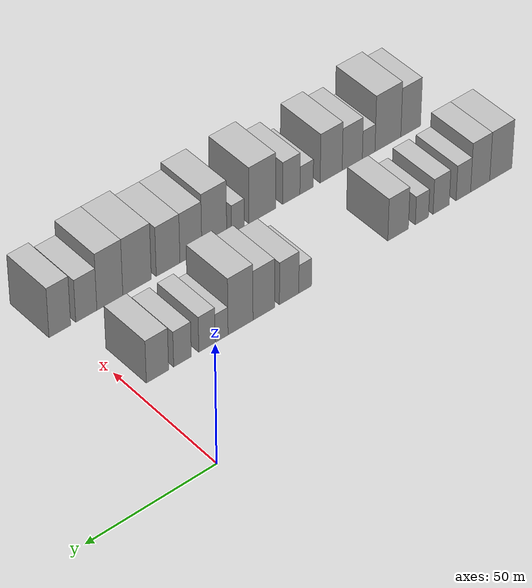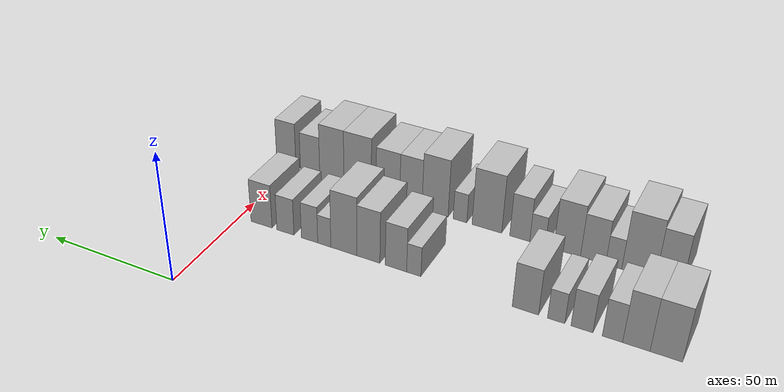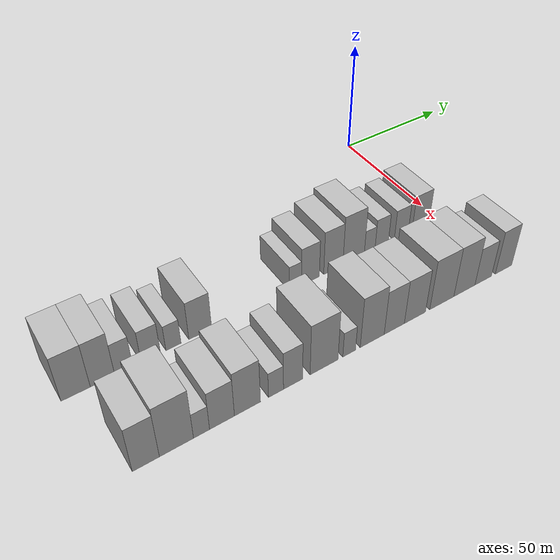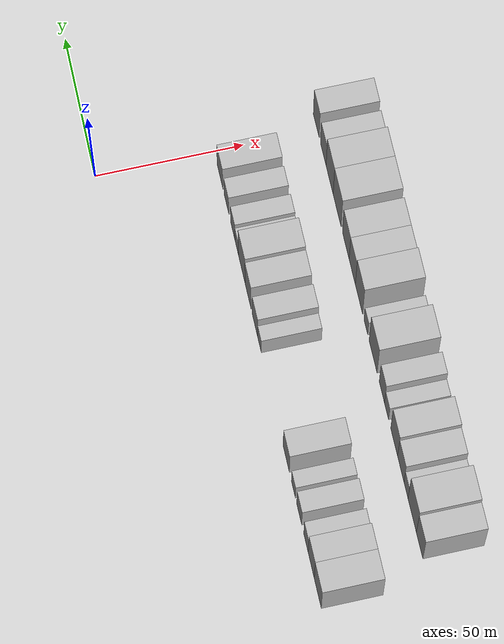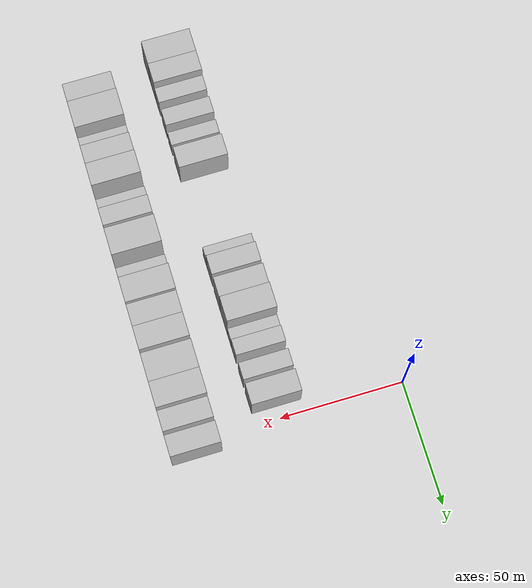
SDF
<sdf version="1.6">
 <world name="default">
  <model name="building_16">
   <static>1</static>
   <pose>50.0000 -153.5488 0 0.000000 0.000000 0.000000</pose>
   <link name="link">
    <pose>0 0 10.50 0 0 0</pose>
    <collision name="collision"><geometry><box><size>20.0000 9.9040 21.0000</size></box></geometry></collision>
    <visual name="visual">
     <cast_shadows>0</cast_shadows>
     <geometry><box><size>20.0000 9.9040 21.0000</size></box></geometry>
     <material>
      <script>
       <uri>model://HANNAS_wall/materials/scripts</uri>
       <uri>model://HANNAS_wall/materials/textures</uri>
       <name>vrc/HANNAS_wall</name>
      </script>
     </material>
    </visual>
   </link>
  </model>
  <model name="building_17">
   <static>1</static>
   <pose>50.0000 -144.3507 0 0.000000 0.000000 0.000000</pose>
   <link name="link">
    <pose>0 0 10.50 0 0 0</pose>
    <collision name="collision"><geometry><box><size>20.0000 8.4921 21.0000</size></box></geometry></collision>
    <visual name="visual">
     <cast_shadows>0</cast_shadows>
     <geometry><box><size>20.0000 8.4921 21.0000</size></box></geometry>
     <material>
      <script>
       <uri>model://HANNAS_wall/materials/scripts</uri>
       <uri>model://HANNAS_wall/materials/textures</uri>
       <name>vrc/HANNAS_wall</name>
      </script>
     </material>
    </visual>
   </link>
  </model>
  <model name="building_18">
   <static>1</static>
   <pose>50.0000 -136.8926 0 0.000000 0.000000 0.000000</pose>
   <link name="link">
    <pose>0 0 7.50 0 0 0</pose>
    <collision name="collision"><geometry><box><size>20.0000 6.4240 15.0000</size></box></geometry></collision>
    <visual name="visual">
     <cast_shadows>0</cast_shadows>
     <geometry><box><size>20.0000 6.4240 15.0000</size></box></geometry>
     <material>
      <script>
       <uri>model://HANNAS_wall/materials/scripts</uri>
       <uri>model://HANNAS_wall/materials/textures</uri>
       <name>vrc/HANNAS_wall</name>
      </script>
     </material>
    </visual>
   </link>
  </model>
  <model name="building_19">
   <static>1</static>
   <pose>50.0000 -127.1403 0 0.000000 0.000000 0.000000</pose>
   <link name="link">
    <pose>0 0 7.50 0 0 0</pose>
    <collision name="collision"><geometry><box><size>20.0000 7.0807 15.0000</size></box></geometry></collision>
    <visual name="visual">
     <cast_shadows>0</cast_shadows>
     <geometry><box><size>20.0000 7.0807 15.0000</size></box></geometry>
     <material>
      <script>
       <uri>model://HANNAS_wall/materials/scripts</uri>
       <uri>model://HANNAS_wall/materials/textures</uri>
       <name>vrc/HANNAS_wall</name>
      </script>
     </material>
    </visual>
   </link>
  </model>
  <model name="building_20">
   <static>1</static>
   <pose>50.0000 -118.7447 0 0.000000 0.000000 0.000000</pose>
   <link name="link">
    <pose>0 0 6.00 0 0 0</pose>
    <collision name="collision"><geometry><box><size>20.0000 5.7105 12.0000</size></box></geometry></collision>
    <visual name="visual">
     <cast_shadows>0</cast_shadows>
     <geometry><box><size>20.0000 5.7105 12.0000</size></box></geometry>
     <material>
      <script>
       <uri>model://HANNAS_wall/materials/scripts</uri>
       <uri>model://HANNAS_wall/materials/textures</uri>
       <name>vrc/HANNAS_wall</name>
      </script>
     </material>
    </visual>
   </link>
  </model>
  <model name="building_21">
   <static>1</static>
   <pose>50.0000 -108.4547 0 0.000000 0.000000 0.000000</pose>
   <link name="link">
    <pose>0 0 9.00 0 0 0</pose>
    <collision name="collision"><geometry><box><size>20.0000 8.8697 18.0000</size></box></geometry></collision>
    <visual name="visual">
     <cast_shadows>0</cast_shadows>
     <geometry><box><size>20.0000 8.8697 18.0000</size></box></geometry>
     <material>
      <script>
       <uri>model://HANNAS_wall/materials/scripts</uri>
       <uri>model://HANNAS_wall/materials/textures</uri>
       <name>vrc/HANNAS_wall</name>
      </script>
     </material>
    </visual>
   </link>
  </model>
  <model name="building_22">
   <static>1</static>
   <pose>50.0000 -69.1038 0 0.000000 0.000000 0.000000</pose>
   <link name="link">
    <pose>0 0 6.00 0 0 0</pose>
    <collision name="collision"><geometry><box><size>20.0000 5.2773 12.0000</size></box></geometry></collision>
    <visual name="visual">
     <cast_shadows>0</cast_shadows>
     <geometry><box><size>20.0000 5.2773 12.0000</size></box></geometry>
     <material>
      <script>
       <uri>model://HANNAS_wall/materials/scripts</uri>
       <uri>model://HANNAS_wall/materials/textures</uri>
       <name>vrc/HANNAS_wall</name>
      </script>
     </material>
    </visual>
   </link>
  </model>
  <model name="building_23">
   <static>1</static>
   <pose>50.0000 -62.4682 0 0.000000 0.000000 0.000000</pose>
   <link name="link">
    <pose>0 0 9.00 0 0 0</pose>
    <collision name="collision"><geometry><box><size>20.0000 7.9938 18.0000</size></box></geometry></collision>
    <visual name="visual">
     <cast_shadows>0</cast_shadows>
     <geometry><box><size>20.0000 7.9938 18.0000</size></box></geometry>
     <material>
      <script>
       <uri>model://HANNAS_wall/materials/scripts</uri>
       <uri>model://HANNAS_wall/materials/textures</uri>
       <name>vrc/HANNAS_wall</name>
      </script>
     </material>
    </visual>
   </link>
  </model>
  <model name="building_24">
   <static>1</static>
   <pose>50.0000 -52.0570 0 0.000000 0.000000 0.000000</pose>
   <link name="link">
    <pose>0 0 10.50 0 0 0</pose>
    <collision name="collision"><geometry><box><size>20.0000 8.8287 21.0000</size></box></geometry></collision>
    <visual name="visual">
     <cast_shadows>0</cast_shadows>
     <geometry><box><size>20.0000 8.8287 21.0000</size></box></geometry>
     <material>
      <script>
       <uri>model://HANNAS_wall/materials/scripts</uri>
       <uri>model://HANNAS_wall/materials/textures</uri>
       <name>vrc/HANNAS_wall</name>
      </script>
     </material>
    </visual>
   </link>
  </model>
  <model name="building_25">
   <static>1</static>
   <pose>50.0000 -42.5791 0 0.000000 0.000000 0.000000</pose>
   <link name="link">
    <pose>0 0 12.00 0 0 0</pose>
    <collision name="collision"><geometry><box><size>20.0000 10.1271 24.0000</size></box></geometry></collision>
    <visual name="visual">
     <cast_shadows>0</cast_shadows>
     <geometry><box><size>20.0000 10.1271 24.0000</size></box></geometry>
     <material>
      <script>
       <uri>model://HANNAS_wall/materials/scripts</uri>
       <uri>model://HANNAS_wall/materials/textures</uri>
       <name>vrc/HANNAS_wall</name>
      </script>
     </material>
    </visual>
   </link>
  </model>
  <model name="building_26">
   <static>1</static>
   <pose>50.0000 -34.9127 0 0.000000 0.000000 0.000000</pose>
   <link name="link">
    <pose>0 0 6.00 0 0 0</pose>
    <collision name="collision"><geometry><box><size>20.0000 5.2056 12.0000</size></box></geometry></collision>
    <visual name="visual">
     <cast_shadows>0</cast_shadows>
     <geometry><box><size>20.0000 5.2056 12.0000</size></box></geometry>
     <material>
      <script>
       <uri>model://HANNAS_wall/materials/scripts</uri>
       <uri>model://HANNAS_wall/materials/textures</uri>
       <name>vrc/HANNAS_wall</name>
      </script>
     </material>
    </visual>
   </link>
  </model>
  <model name="building_27">
   <static>1</static>
   <pose>50.0000 -29.0377 0 0.000000 0.000000 0.000000</pose>
   <link name="link">
    <pose>0 0 7.50 0 0 0</pose>
    <collision name="collision"><geometry><box><size>20.0000 6.5444 15.0000</size></box></geometry></collision>
    <visual name="visual">
     <cast_shadows>0</cast_shadows>
     <geometry><box><size>20.0000 6.5444 15.0000</size></box></geometry>
     <material>
      <script>
       <uri>model://HANNAS_wall/materials/scripts</uri>
       <uri>model://HANNAS_wall/materials/textures</uri>
       <name>vrc/HANNAS_wall</name>
      </script>
     </material>
    </visual>
   </link>
  </model>
  <model name="building_28">
   <static>1</static>
   <pose>50.0000 -19.2700 0 0.000000 0.000000 0.000000</pose>
   <link name="link">
    <pose>0 0 7.50 0 0 0</pose>
    <collision name="collision"><geometry><box><size>20.0000 6.9911 15.0000</size></box></geometry></collision>
    <visual name="visual">
     <cast_shadows>0</cast_shadows>
     <geometry><box><size>20.0000 6.9911 15.0000</size></box></geometry>
     <material>
      <script>
       <uri>model://HANNAS_wall/materials/scripts</uri>
       <uri>model://HANNAS_wall/materials/textures</uri>
       <name>vrc/HANNAS_wall</name>
      </script>
     </material>
    </visual>
   </link>
  </model>
  <model name="building_29">
   <static>1</static>
   <pose>50.0000 -9.3897 0 0.000000 0.000000 0.000000</pose>
   <link name="link">
    <pose>0 0 9.00 0 0 0</pose>
    <collision name="collision"><geometry><box><size>20.0000 8.7695 18.0000</size></box></geometry></collision>
    <visual name="visual">
     <cast_shadows>0</cast_shadows>
     <geometry><box><size>20.0000 8.7695 18.0000</size></box></geometry>
     <material>
      <script>
       <uri>model://HANNAS_wall/materials/scripts</uri>
       <uri>model://HANNAS_wall/materials/textures</uri>
       <name>vrc/HANNAS_wall</name>
      </script>
     </material>
    </visual>
   </link>
  </model>
  <model name="building_78">
   <static>1</static>
   <pose>85.0000 -145.4755 0 0.000000 0.000000 0.000000</pose>
   <link name="link">
    <pose>0 0 10.50 0 0 0</pose>
    <collision name="collision"><geometry><box><size>20.0000 8.7924 21.0000</size></box></geometry></collision>
    <visual name="visual">
     <cast_shadows>0</cast_shadows>
     <geometry><box><size>20.0000 8.7924 21.0000</size></box></geometry>
     <material>
      <script>
       <uri>model://HANNAS_wall/materials/scripts</uri>
       <uri>model://HANNAS_wall/materials/textures</uri>
       <name>vrc/HANNAS_wall</name>
      </script>
     </material>
    </visual>
   </link>
  </model>
  <model name="building_79">
   <static>1</static>
   <pose>85.0000 -135.3537 0 0.000000 0.000000 0.000000</pose>
   <link name="link">
    <pose>0 0 12.00 0 0 0</pose>
    <collision name="collision"><geometry><box><size>20.0000 11.4513 24.0000</size></box></geometry></collision>
    <visual name="visual">
     <cast_shadows>0</cast_shadows>
     <geometry><box><size>20.0000 11.4513 24.0000</size></box></geometry>
     <material>
      <script>
       <uri>model://HANNAS_wall/materials/scripts</uri>
       <uri>model://HANNAS_wall/materials/textures</uri>
       <name>vrc/HANNAS_wall</name>
      </script>
     </material>
    </visual>
   </link>
  </model>
  <model name="building_80">
   <static>1</static>
   <pose>85.0000 -126.8528 0 0.000000 0.000000 0.000000</pose>
   <link name="link">
    <pose>0 0 6.00 0 0 0</pose>
    <collision name="collision"><geometry><box><size>20.0000 5.5505 12.0000</size></box></geometry></collision>
    <visual name="visual">
     <cast_shadows>0</cast_shadows>
     <geometry><box><size>20.0000 5.5505 12.0000</size></box></geometry>
     <material>
      <script>
       <uri>model://HANNAS_wall/materials/scripts</uri>
       <uri>model://HANNAS_wall/materials/textures</uri>
       <name>vrc/HANNAS_wall</name>
      </script>
     </material>
    </visual>
   </link>
  </model>
  <model name="building_81">
   <static>1</static>
   <pose>85.0000 -119.6694 0 0.000000 0.000000 0.000000</pose>
   <link name="link">
    <pose>0 0 9.00 0 0 0</pose>
    <collision name="collision"><geometry><box><size>20.0000 8.8163 18.0000</size></box></geometry></collision>
    <visual name="visual">
     <cast_shadows>0</cast_shadows>
     <geometry><box><size>20.0000 8.8163 18.0000</size></box></geometry>
     <material>
      <script>
       <uri>model://HANNAS_wall/materials/scripts</uri>
       <uri>model://HANNAS_wall/materials/textures</uri>
       <name>vrc/HANNAS_wall</name>
      </script>
     </material>
    </visual>
   </link>
  </model>
  <model name="building_82">
   <static>1</static>
   <pose>85.0000 -110.4917 0 0.000000 0.000000 0.000000</pose>
   <link name="link">
    <pose>0 0 10.50 0 0 0</pose>
    <collision name="collision"><geometry><box><size>20.0000 9.5391 21.0000</size></box></geometry></collision>
    <visual name="visual">
     <cast_shadows>0</cast_shadows>
     <geometry><box><size>20.0000 9.5391 21.0000</size></box></geometry>
     <material>
      <script>
       <uri>model://HANNAS_wall/materials/scripts</uri>
       <uri>model://HANNAS_wall/materials/textures</uri>
       <name>vrc/HANNAS_wall</name>
      </script>
     </material>
    </visual>
   </link>
  </model>
  <model name="building_83">
   <static>1</static>
   <pose>85.0000 -99.8729 0 0.000000 0.000000 0.000000</pose>
   <link name="link">
    <pose>0 0 6.00 0 0 0</pose>
    <collision name="collision"><geometry><box><size>20.0000 5.6985 12.0000</size></box></geometry></collision>
    <visual name="visual">
     <cast_shadows>0</cast_shadows>
     <geometry><box><size>20.0000 5.6985 12.0000</size></box></geometry>
     <material>
      <script>
       <uri>model://HANNAS_wall/materials/scripts</uri>
       <uri>model://HANNAS_wall/materials/textures</uri>
       <name>vrc/HANNAS_wall</name>
      </script>
     </material>
    </visual>
   </link>
  </model>
  <model name="building_84">
   <static>1</static>
   <pose>85.0000 -93.3354 0 0.000000 0.000000 0.000000</pose>
   <link name="link">
    <pose>0 0 9.00 0 0 0</pose>
    <collision name="collision"><geometry><box><size>20.0000 7.3766 18.0000</size></box></geometry></collision>
    <visual name="visual">
     <cast_shadows>0</cast_shadows>
     <geometry><box><size>20.0000 7.3766 18.0000</size></box></geometry>
     <material>
      <script>
       <uri>model://HANNAS_wall/materials/scripts</uri>
       <uri>model://HANNAS_wall/materials/textures</uri>
       <name>vrc/HANNAS_wall</name>
      </script>
     </material>
    </visual>
   </link>
  </model>
  <model name="building_85">
   <static>1</static>
   <pose>85.0000 -81.0165 0 0.000000 0.000000 0.000000</pose>
   <link name="link">
    <pose>0 0 12.00 0 0 0</pose>
    <collision name="collision"><geometry><box><size>20.0000 11.2612 24.0000</size></box></geometry></collision>
    <visual name="visual">
     <cast_shadows>0</cast_shadows>
     <geometry><box><size>20.0000 11.2612 24.0000</size></box></geometry>
     <material>
      <script>
       <uri>model://HANNAS_wall/materials/scripts</uri>
       <uri>model://HANNAS_wall/materials/textures</uri>
       <name>vrc/HANNAS_wall</name>
      </script>
     </material>
    </visual>
   </link>
  </model>
  <model name="building_86">
   <static>1</static>
   <pose>85.0000 -70.7324 0 0.000000 0.000000 0.000000</pose>
   <link name="link">
    <pose>0 0 6.00 0 0 0</pose>
    <collision name="collision"><geometry><box><size>20.0000 5.3070 12.0000</size></box></geometry></collision>
    <visual name="visual">
     <cast_shadows>0</cast_shadows>
     <geometry><box><size>20.0000 5.3070 12.0000</size></box></geometry>
     <material>
      <script>
       <uri>model://HANNAS_wall/materials/scripts</uri>
       <uri>model://HANNAS_wall/materials/textures</uri>
       <name>vrc/HANNAS_wall</name>
      </script>
     </material>
    </visual>
   </link>
  </model>
  <model name="building_87">
   <static>1</static>
   <pose>85.0000 -60.9163 0 0.000000 0.000000 0.000000</pose>
   <link name="link">
    <pose>0 0 12.00 0 0 0</pose>
    <collision name="collision"><geometry><box><size>20.0000 10.3251 24.0000</size></box></geometry></collision>
    <visual name="visual">
     <cast_shadows>0</cast_shadows>
     <geometry><box><size>20.0000 10.3251 24.0000</size></box></geometry>
     <material>
      <script>
       <uri>model://HANNAS_wall/materials/scripts</uri>
       <uri>model://HANNAS_wall/materials/textures</uri>
       <name>vrc/HANNAS_wall</name>
      </script>
     </material>
    </visual>
   </link>
  </model>
  <model name="building_88">
   <static>1</static>
   <pose>85.0000 -51.2588 0 0.000000 0.000000 0.000000</pose>
   <link name="link">
    <pose>0 0 10.50 0 0 0</pose>
    <collision name="collision"><geometry><box><size>20.0000 8.9899 21.0000</size></box></geometry></collision>
    <visual name="visual">
     <cast_shadows>0</cast_shadows>
     <geometry><box><size>20.0000 8.9899 21.0000</size></box></geometry>
     <material>
      <script>
       <uri>model://HANNAS_wall/materials/scripts</uri>
       <uri>model://HANNAS_wall/materials/textures</uri>
       <name>vrc/HANNAS_wall</name>
      </script>
     </material>
    </visual>
   </link>
  </model>
  <model name="building_89">
   <static>1</static>
   <pose>85.0000 -41.9272 0 0.000000 0.000000 0.000000</pose>
   <link name="link">
    <pose>0 0 10.50 0 0 0</pose>
    <collision name="collision"><geometry><box><size>20.0000 9.6734 21.0000</size></box></geometry></collision>
    <visual name="visual">
     <cast_shadows>0</cast_shadows>
     <geometry><box><size>20.0000 9.6734 21.0000</size></box></geometry>
     <material>
      <script>
       <uri>model://HANNAS_wall/materials/scripts</uri>
       <uri>model://HANNAS_wall/materials/textures</uri>
       <name>vrc/HANNAS_wall</name>
      </script>
     </material>
    </visual>
   </link>
  </model>
  <model name="building_90">
   <static>1</static>
   <pose>85.0000 -29.3523 0 0.000000 0.000000 0.000000</pose>
   <link name="link">
    <pose>0 0 12.00 0 0 0</pose>
    <collision name="collision"><geometry><box><size>20.0000 11.4765 24.0000</size></box></geometry></collision>
    <visual name="visual">
     <cast_shadows>0</cast_shadows>
     <geometry><box><size>20.0000 11.4765 24.0000</size></box></geometry>
     <material>
      <script>
       <uri>model://HANNAS_wall/materials/scripts</uri>
       <uri>model://HANNAS_wall/materials/textures</uri>
       <name>vrc/HANNAS_wall</name>
      </script>
     </material>
    </visual>
   </link>
  </model>
  <model name="building_91">
   <static>1</static>
   <pose>85.0000 -18.4306 0 0.000000 0.000000 0.000000</pose>
   <link name="link">
    <pose>0 0 12.00 0 0 0</pose>
    <collision name="collision"><geometry><box><size>20.0000 10.3669 24.0000</size></box></geometry></collision>
    <visual name="visual">
     <cast_shadows>0</cast_shadows>
     <geometry><box><size>20.0000 10.3669 24.0000</size></box></geometry>
     <material>
      <script>
       <uri>model://HANNAS_wall/materials/scripts</uri>
       <uri>model://HANNAS_wall/materials/textures</uri>
       <name>vrc/HANNAS_wall</name>
      </script>
     </material>
    </visual>
   </link>
  </model>
  <model name="building_92">
   <static>1</static>
   <pose>85.0000 -9.0638 0 0.000000 0.000000 0.000000</pose>
   <link name="link">
    <pose>0 0 9.00 0 0 0</pose>
    <collision name="collision"><geometry><box><size>20.0000 8.3666 18.0000</size></box></geometry></collision>
    <visual name="visual">
     <cast_shadows>0</cast_shadows>
     <geometry><box><size>20.0000 8.3666 18.0000</size></box></geometry>
     <material>
      <script>
       <uri>model://HANNAS_wall/materials/scripts</uri>
       <uri>model://HANNAS_wall/materials/textures</uri>
       <name>vrc/HANNAS_wall</name>
      </script>
     </material>
    </visual>
   </link>
  </model>
  <model name="building_93">
   <static>1</static>
   <pose>85.0000 1.3735 0 0.000000 0.000000 0.000000</pose>
   <link name="link">
    <pose>0 0 10.50 0 0 0</pose>
    <collision name="collision"><geometry><box><size>20.0000 8.5080 21.0000</size></box></geometry></collision>
    <visual name="visual">
     <cast_shadows>0</cast_shadows>
     <geometry><box><size>20.0000 8.5080 21.0000</size></box></geometry>
     <material>
      <script>
       <uri>model://HANNAS_wall/materials/scripts</uri>
       <uri>model://HANNAS_wall/materials/textures</uri>
       <name>vrc/HANNAS_wall</name>
      </script>
     </material>
    </visual>
   </link>
  </model>
 </world>
</sdf>
